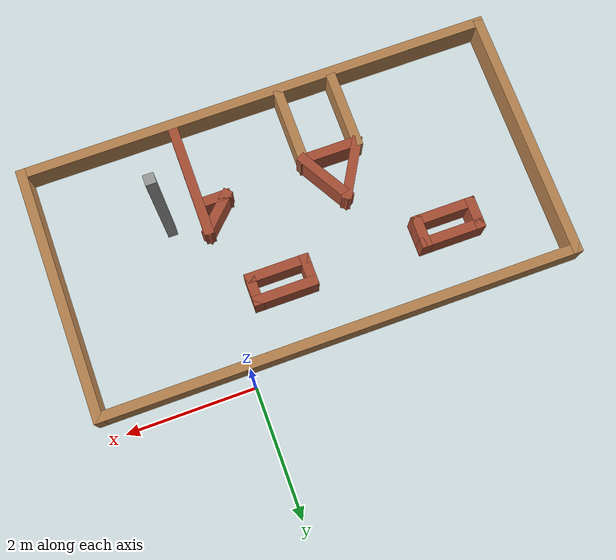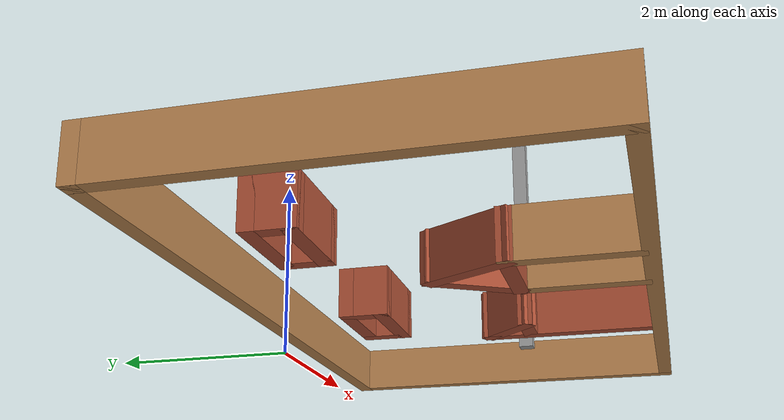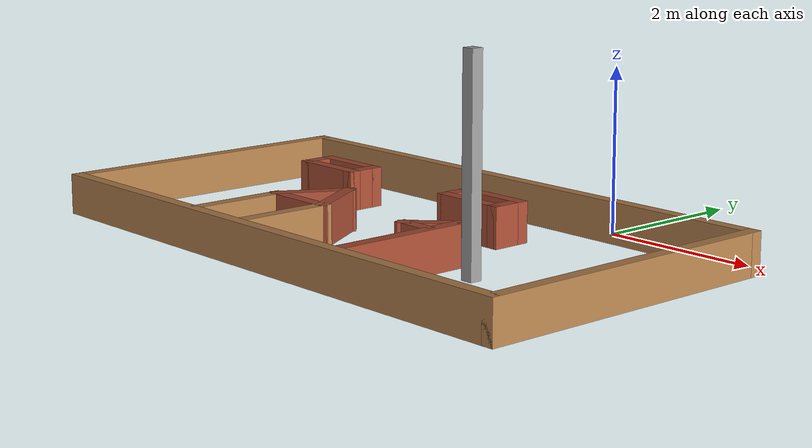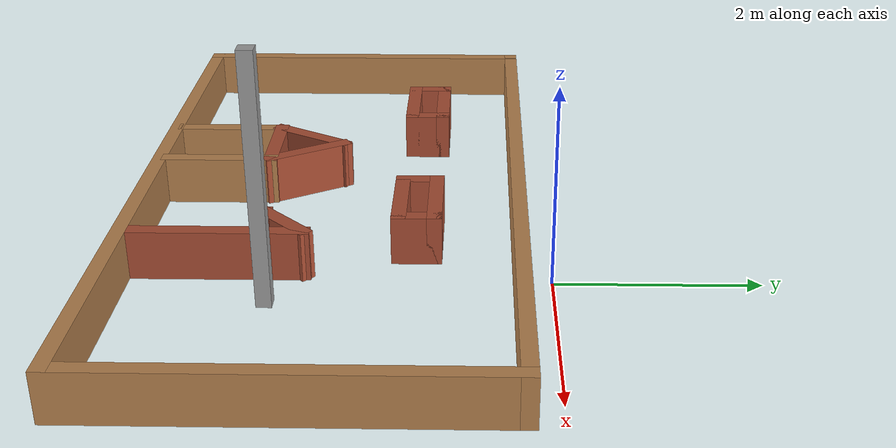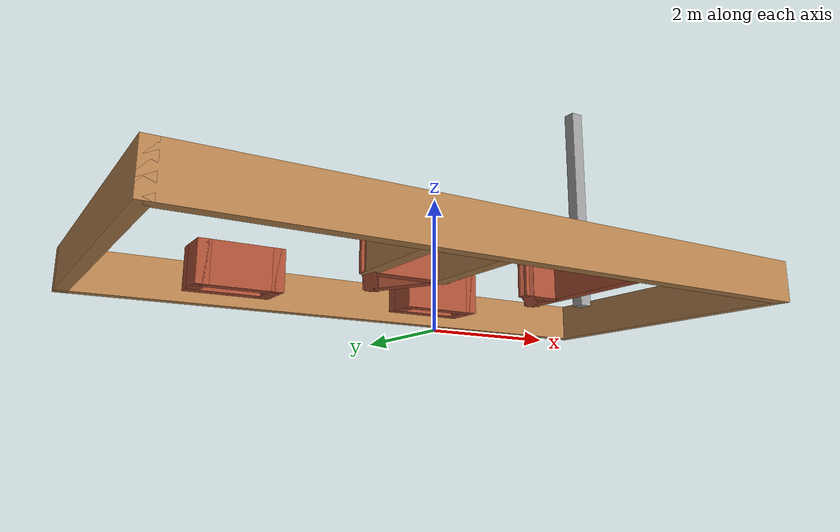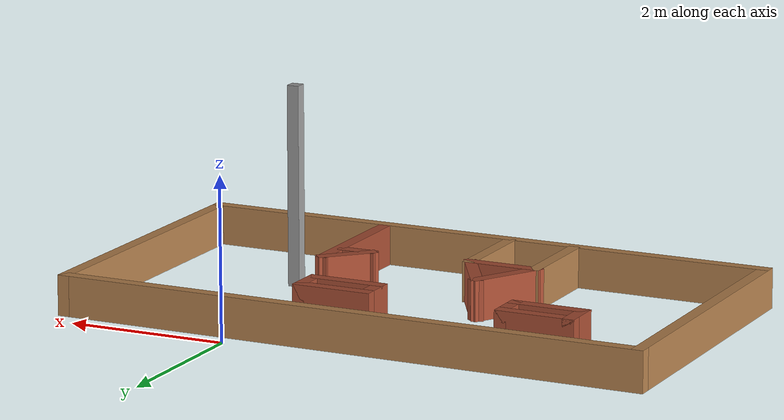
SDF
<?xml version='1.0'?>
<sdf version='1.7'>
  <model name='House_Maze'>
    <pose>-1.425 -2.1075 0 0 -0 0</pose>
    <link name='Wall_1'>
      <collision name='Wall_1_Collision'>
        <geometry>
          <box>
            <size>3.99 0.15 0.5</size>
          </box>
        </geometry>
        <pose>0 0 0.25 0 -0 0</pose>
      </collision>
      <visual name='Wall_1_Visual'>
        <pose>0 0 0.25 0 -0 0</pose>
        <geometry>
          <box>
            <size>3.99 0.15 0.5</size>
          </box>
        </geometry>
        <material>
          <script>
            <uri>file://media/materials/scripts/gazebo.material</uri>
            <name>Gazebo/Wood</name>
          </script>
          <ambient>1 1 1 1</ambient>
        </material>
        <meta>
          <layer>0</layer>
        </meta>
      </visual>
      <pose>-3.675 -0.1125 0 0 -0 -1.5708</pose>
    </link>
    <link name='Wall_10'>
      <collision name='Wall_10_Collision'>
        <geometry>
          <box>
            <size>0.5 0.15 0.5</size>
          </box>
        </geometry>
        <pose>0 0 0.25 0 -0 0</pose>
      </collision>
      <visual name='Wall_10_Visual'>
        <pose>0 0 0.25 0 -0 0</pose>
        <geometry>
          <box>
            <size>0.5 0.15 0.5</size>
          </box>
        </geometry>
        <material>
          <script>
            <uri>file://media/materials/scripts/gazebo.material</uri>
            <name>Gazebo/Bricks</name>
          </script>
          <ambient>1 1 1 1</ambient>
        </material>
        <meta>
          <layer>0</layer>
        </meta>
      </visual>
      <pose>-1.625 0.8025 0 0 -0 1.5708</pose>
    </link>
    <link name='Wall_11'>
      <collision name='Wall_11_Collision'>
        <geometry>
          <box>
            <size>1 0.15 0.5</size>
          </box>
        </geometry>
        <pose>0 0 0.25 0 -0 0</pose>
      </collision>
      <visual name='Wall_11_Visual'>
        <pose>0 0 0.25 0 -0 0</pose>
        <geometry>
          <box>
            <size>1 0.15 0.5</size>
          </box>
        </geometry>
        <material>
          <script>
            <uri>file://media/materials/scripts/gazebo.material</uri>
            <name>Gazebo/Bricks</name>
          </script>
          <ambient>1 1 1 1</ambient>
        </material>
        <meta>
          <layer>0</layer>
        </meta>
      </visual>
      <pose>-2.05 0.9775 0 0 -0 3.14159</pose>
    </link>
    <link name='Wall_2'>
      <collision name='Wall_2_Collision'>
        <geometry>
          <box>
            <size>7.5 0.15 0.5</size>
          </box>
        </geometry>
        <pose>0 0 0.25 0 -0 0</pose>
      </collision>
      <visual name='Wall_2_Visual'>
        <pose>0 0 0.25 0 -0 0</pose>
        <geometry>
          <box>
            <size>7.5 0.15 0.5</size>
          </box>
        </geometry>
        <material>
          <script>
            <uri>file://media/materials/scripts/gazebo.material</uri>
            <name>Gazebo/Wood</name>
          </script>
          <ambient>1 1 1 1</ambient>
        </material>
        <meta>
          <layer>0</layer>
        </meta>
      </visual>
      <pose>0 -2.0325 0 0 -0 0</pose>
    </link>
    <link name='Wall_20'>
      <collision name='Wall_20_Collision'>
        <geometry>
          <box>
            <size>1 0.15 0.5</size>
          </box>
        </geometry>
        <pose>0 0 0.25 0 -0 0</pose>
      </collision>
      <visual name='Wall_20_Visual'>
        <pose>0 0 0.25 0 -0 0</pose>
        <geometry>
          <box>
            <size>1 0.15 0.5</size>
          </box>
        </geometry>
        <material>
          <script>
            <uri>file://media/materials/scripts/gazebo.material</uri>
            <name>Gazebo/Bricks</name>
          </script>
          <ambient>1 1 1 1</ambient>
        </material>
        <meta>
          <layer>0</layer>
        </meta>
      </visual>
      <pose>-2.05 0.6275 0 0 -0 0</pose>
    </link>
    <link name='Wall_23'>
      <collision name='Wall_23_Collision'>
        <geometry>
          <box>
            <size>1 0.15 0.5</size>
          </box>
        </geometry>
        <pose>0 0 0.25 0 -0 0</pose>
      </collision>
      <visual name='Wall_23_Visual'>
        <pose>0 0 0.25 0 -0 0</pose>
        <geometry>
          <box>
            <size>1 0.15 0.5</size>
          </box>
        </geometry>
        <material>
          <script>
            <uri>file://media/materials/scripts/gazebo.material</uri>
            <name>Gazebo/Bricks</name>
          </script>
          <ambient>1 1 1 1</ambient>
        </material>
        <meta>
          <layer>0</layer>
        </meta>
      </visual>
      <pose>-1.0075 -0.4705 0 0 -0 -2.09447</pose>
    </link>
    <link name='Wall_25'>
      <collision name='Wall_25_Collision'>
        <geometry>
          <box>
            <size>1 0.15 0.5</size>
          </box>
        </geometry>
        <pose>0 0 0.25 0 -0 0</pose>
      </collision>
      <visual name='Wall_25_Visual'>
        <pose>0 0 0.25 0 -0 0</pose>
        <geometry>
          <box>
            <size>1 0.15 0.5</size>
          </box>
        </geometry>
        <material>
          <script>
            <uri>file://media/materials/scripts/gazebo.material</uri>
            <name>Gazebo/Bricks</name>
          </script>
          <ambient>1 1 1 1</ambient>
        </material>
        <meta>
          <layer>0</layer>
        </meta>
      </visual>
      <pose>-0.5825 -0.4705 0 0 -0 -1.04713</pose>
    </link>
    <link name='Wall_27'>
      <collision name='Wall_27_Collision'>
        <geometry>
          <box>
            <size>1 0.15 0.5</size>
          </box>
        </geometry>
        <pose>0 0 0.25 0 -0 0</pose>
      </collision>
      <visual name='Wall_27_Visual'>
        <pose>0 0 0.25 0 -0 0</pose>
        <geometry>
          <box>
            <size>1 0.15 0.5</size>
          </box>
        </geometry>
        <material>
          <script>
            <uri>file://media/materials/scripts/gazebo.material</uri>
            <name>Gazebo/Bricks</name>
          </script>
          <ambient>1 1 1 1</ambient>
        </material>
        <meta>
          <layer>0</layer>
        </meta>
      </visual>
      <pose>-0.795 -0.8385 0 0 -0 0</pose>
    </link>
    <link name='Wall_29'>
      <collision name='Wall_29_Collision'>
        <geometry>
          <box>
            <size>1.75 0.15 0.5</size>
          </box>
        </geometry>
        <pose>0 0 0.25 0 -0 0</pose>
      </collision>
      <visual name='Wall_29_Visual'>
        <pose>0 0 0.25 0 -0 0</pose>
        <geometry>
          <box>
            <size>1.75 0.15 0.5</size>
          </box>
        </geometry>
        <material>
          <script>
            <uri>file://media/materials/scripts/gazebo.material</uri>
            <name>Gazebo/Bricks</name>
          </script>
          <ambient>1 1 1 1</ambient>
        </material>
        <meta>
          <layer>0</layer>
        </meta>
      </visual>
      <pose>1.325 -1.0825 0 0 -0 -1.5708</pose>
    </link>
    <link name='Wall_33'>
      <collision name='Wall_33_Collision'>
        <geometry>
          <box>
            <size>1.25 0.15 0.5</size>
          </box>
        </geometry>
        <pose>0 0 0.25 0 -0 0</pose>
      </collision>
      <visual name='Wall_33_Visual'>
        <pose>0 0 0.25 0 -0 0</pose>
        <geometry>
          <box>
            <size>1.25 0.15 0.5</size>
          </box>
        </geometry>
        <material>
          <script>
            <uri>file://media/materials/scripts/gazebo.material</uri>
            <name>Gazebo/Wood</name>
          </script>
          <ambient>1 1 1 1</ambient>
        </material>
        <meta>
          <layer>0</layer>
        </meta>
      </visual>
      <pose>-1.22 -1.3885 0 0 -0 -1.5708</pose>
    </link>
    <link name='Wall_35'>
      <collision name='Wall_35_Collision'>
        <geometry>
          <box>
            <size>1.25 0.15 0.5</size>
          </box>
        </geometry>
        <pose>0 0 0.25 0 -0 0</pose>
      </collision>
      <visual name='Wall_35_Visual'>
        <pose>0 0 0.25 0 -0 0</pose>
        <geometry>
          <box>
            <size>1.25 0.15 0.5</size>
          </box>
        </geometry>
        <material>
          <script>
            <uri>file://media/materials/scripts/gazebo.material</uri>
            <name>Gazebo/Wood</name>
          </script>
          <ambient>1 1 1 1</ambient>
        </material>
        <meta>
          <layer>0</layer>
        </meta>
      </visual>
      <pose>-0.37 -1.3885 0 0 -0 -1.5708</pose>
    </link>
    <link name='Wall_37'>
      <collision name='Wall_37_Collision'>
        <geometry>
          <box>
            <size>1 0.15 0.5</size>
          </box>
        </geometry>
        <pose>0 0 0.25 0 -0 0</pose>
      </collision>
      <visual name='Wall_37_Visual'>
        <pose>0 0 0.25 0 -0 0</pose>
        <geometry>
          <box>
            <size>1 0.15 0.5</size>
          </box>
        </geometry>
        <material>
          <script>
            <uri>file://media/materials/scripts/gazebo.material</uri>
            <name>Gazebo/Bricks</name>
          </script>
          <ambient>1 1 1 1</ambient>
        </material>
        <meta>
          <layer>0</layer>
        </meta>
      </visual>
      <pose>0.56 0.6175 0 0 -0 0</pose>
    </link>
    <link name='Wall_38'>
      <collision name='Wall_38_Collision'>
        <geometry>
          <box>
            <size>0.5 0.15 0.5</size>
          </box>
        </geometry>
        <pose>0 0 0.25 0 -0 0</pose>
      </collision>
      <visual name='Wall_38_Visual'>
        <pose>0 0 0.25 0 -0 0</pose>
        <geometry>
          <box>
            <size>0.5 0.15 0.5</size>
          </box>
        </geometry>
        <material>
          <script>
            <uri>file://media/materials/scripts/gazebo.material</uri>
            <name>Gazebo/Bricks</name>
          </script>
          <ambient>1 1 1 1</ambient>
        </material>
        <meta>
          <layer>0</layer>
        </meta>
      </visual>
      <pose>0.985 0.7925 0 0 -0 1.5708</pose>
    </link>
    <link name='Wall_39'>
      <collision name='Wall_39_Collision'>
        <geometry>
          <box>
            <size>1 0.15 0.5</size>
          </box>
        </geometry>
        <pose>0 0 0.25 0 -0 0</pose>
      </collision>
      <visual name='Wall_39_Visual'>
        <pose>0 0 0.25 0 -0 0</pose>
        <geometry>
          <box>
            <size>1 0.15 0.5</size>
          </box>
        </geometry>
        <material>
          <script>
            <uri>file://media/materials/scripts/gazebo.material</uri>
            <name>Gazebo/Bricks</name>
          </script>
          <ambient>1 1 1 1</ambient>
        </material>
        <meta>
          <layer>0</layer>
        </meta>
      </visual>
      <pose>0.56 0.9675 0 0 -0 3.14159</pose>
    </link>
    <link name='Wall_40'>
      <collision name='Wall_40_Collision'>
        <geometry>
          <box>
            <size>0.5 0.15 0.5</size>
          </box>
        </geometry>
        <pose>0 0 0.25 0 -0 0</pose>
      </collision>
      <visual name='Wall_40_Visual'>
        <pose>0 0 0.25 0 -0 0</pose>
        <geometry>
          <box>
            <size>0.5 0.15 0.5</size>
          </box>
        </geometry>
        <material>
          <script>
            <uri>file://media/materials/scripts/gazebo.material</uri>
            <name>Gazebo/Bricks</name>
          </script>
          <ambient>1 1 1 1</ambient>
        </material>
        <meta>
          <layer>0</layer>
        </meta>
      </visual>
      <pose>0.135 0.7925 0 0 -0 -1.5708</pose>
    </link>
    <link name='Wall_5'>
      <collision name='Wall_5_Collision'>
        <geometry>
          <box>
            <size>3.99 0.15 0.5</size>
          </box>
        </geometry>
        <pose>0 0 0.25 0 -0 0</pose>
      </collision>
      <visual name='Wall_5_Visual'>
        <pose>0 0 0.25 0 -0 0</pose>
        <geometry>
          <box>
            <size>3.99 0.15 0.5</size>
          </box>
        </geometry>
        <material>
          <script>
            <uri>file://media/materials/scripts/gazebo.material</uri>
            <name>Gazebo/Wood</name>
          </script>
          <ambient>1 1 1 1</ambient>
        </material>
        <meta>
          <layer>0</layer>
        </meta>
      </visual>
      <pose>3.675 -0.1125 0 0 -0 1.5708</pose>
    </link>
    <link name='Wall_50'>
      <collision name='Wall_50_Collision'>
        <geometry>
          <box>
            <size>0.75 0.15 0.5</size>
          </box>
        </geometry>
        <pose>0 0 0.25 0 -0 0</pose>
      </collision>
      <visual name='Wall_50_Visual'>
        <pose>0 0 0.25 0 -0 0</pose>
        <geometry>
          <box>
            <size>0.75 0.15 0.5</size>
          </box>
        </geometry>
        <material>
          <script>
            <uri>file://media/materials/scripts/gazebo.material</uri>
            <name>Gazebo/Bricks</name>
          </script>
          <ambient>1 1 1 1</ambient>
        </material>
        <meta>
          <layer>0</layer>
        </meta>
      </visual>
      <pose>1.113 -0.4945 0 0 -0 -2.35619</pose>
    </link>
    <link name='Wall_52'>
      <collision name='Wall_52_Collision'>
        <geometry>
          <box>
            <size>0.5 0.15 0.5</size>
          </box>
        </geometry>
        <pose>0 0 0.25 0 -0 0</pose>
      </collision>
      <visual name='Wall_52_Visual'>
        <pose>0 0 0.25 0 -0 0</pose>
        <geometry>
          <box>
            <size>0.5 0.15 0.5</size>
          </box>
        </geometry>
        <material>
          <script>
            <uri>file://media/materials/scripts/gazebo.material</uri>
            <name>Gazebo/Bricks</name>
          </script>
          <ambient>1 1 1 1</ambient>
        </material>
        <meta>
          <layer>0</layer>
        </meta>
      </visual>
      <pose>1.076 -0.7065 0 0 -0 0</pose>
    </link>
    <link name='Wall_56'>
      <collision name='Wall_56_Collision'>
        <geometry>
          <box>
            <size>0.15 0.15 2.5</size>
          </box>
        </geometry>
        <pose>0 0 1.25 0 -0 0</pose>
      </collision>
      <visual name='Wall_56_Visual'>
        <pose>0 0 1.25 0 -0 0</pose>
        <geometry>
          <box>
            <size>0.15 0.15 2.5</size>
          </box>
        </geometry>
        <material>
          <script>
            <uri>file://media/materials/scripts/gazebo.material</uri>
            <name>Gazebo/Grey</name>
          </script>
          <ambient>1 1 1 1</ambient>
        </material>
        <meta>
          <layer>0</layer>
        </meta>
      </visual>
      <pose>1.84461 -0.5825 0 0 -0 0</pose>
    </link>
    <link name='Wall_57'>
      <collision name='Wall_57_Collision'>
        <geometry>
          <box>
            <size>0.15 0.15 2.5</size>
          </box>
        </geometry>
        <pose>0 0 1.25 0 -0 0</pose>
      </collision>
      <visual name='Wall_57_Visual'>
        <pose>0 0 1.25 0 -0 0</pose>
        <geometry>
          <box>
            <size>0.15 0.15 2.5</size>
          </box>
        </geometry>
        <material>
          <script>
            <uri>file://media/materials/scripts/gazebo.material</uri>
            <name>Gazebo/Bricks</name>
          </script>
          <ambient>1 1 1 1</ambient>
        </material>
        <meta>
          <layer>0</layer>
        </meta>
      </visual>
      <pose>1.84461 -0.5825 0 0 -0 0</pose>
    </link>
    <link name='Wall_6'>
      <collision name='Wall_6_Collision'>
        <geometry>
          <box>
            <size>7.5 0.15 0.5</size>
          </box>
        </geometry>
        <pose>0 0 0.25 0 -0 0</pose>
      </collision>
      <visual name='Wall_6_Visual'>
        <pose>0 0 0.25 0 -0 0</pose>
        <geometry>
          <box>
            <size>7.5 0.15 0.5</size>
          </box>
        </geometry>
        <material>
          <script>
            <uri>file://media/materials/scripts/gazebo.material</uri>
            <name>Gazebo/Wood</name>
          </script>
          <ambient>1 1 1 1</ambient>
        </material>
        <meta>
          <layer>0</layer>
        </meta>
      </visual>
      <pose>0 1.8075 0 0 -0 3.14159</pose>
    </link>
    <link name='Wall_8'>
      <collision name='Wall_8_Collision'>
        <geometry>
          <box>
            <size>0.5 0.15 0.5</size>
          </box>
        </geometry>
        <pose>0 0 0.25 0 -0 0</pose>
      </collision>
      <visual name='Wall_8_Visual'>
        <pose>0 0 0.25 0 -0 0</pose>
        <geometry>
          <box>
            <size>0.5 0.15 0.5</size>
          </box>
        </geometry>
        <material>
          <script>
            <uri>file://media/materials/scripts/gazebo.material</uri>
            <name>Gazebo/Bricks</name>
          </script>
          <ambient>1 1 1 1</ambient>
        </material>
        <meta>
          <layer>0</layer>
        </meta>
      </visual>
      <pose>-2.475 0.8025 0 0 -0 -1.5708</pose>
    </link>
    <static>1</static>
  </model>
</sdf>
